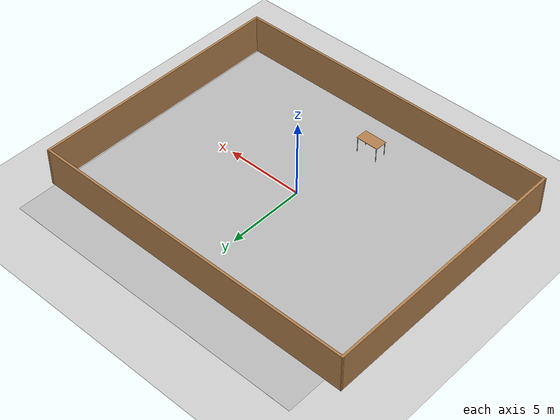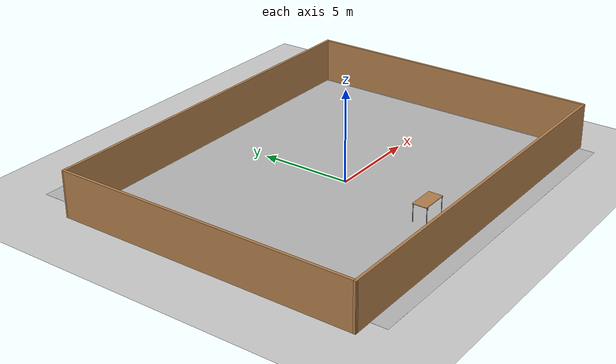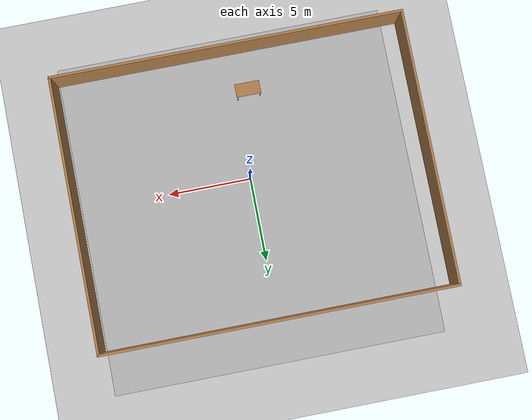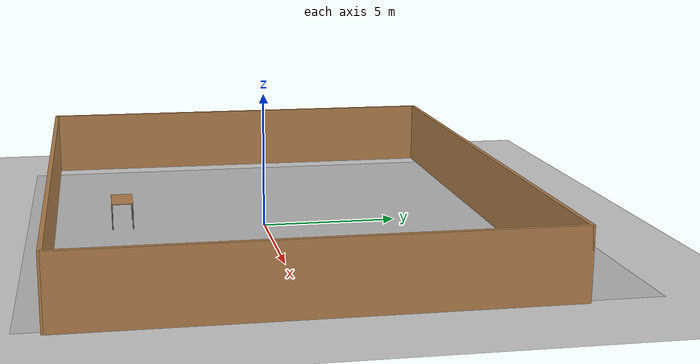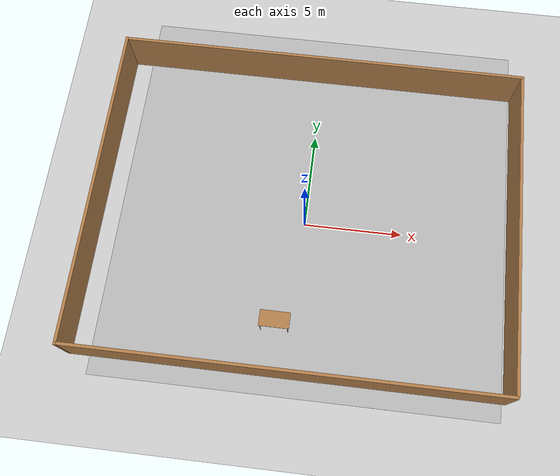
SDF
<sdf version="1.7">
 <world name="default">
  <light name="sun" type="directional">
   <pose>0 0 10 0 -0 0</pose>
   <diffuse>0.8 0.8 0.8 1</diffuse>
   <specular>0.2 0.2 0.2 1</specular>
   <attenuation>
    <range>1000</range>
    <constant>0.9</constant>
    <linear>0.01</linear>
    <quadratic>0.001</quadratic>
   </attenuation>
   <direction>-0.5 0.1 -0.9</direction>
   <spot><inner_angle>0</inner_angle><outer_angle>0</outer_angle><falloff>0</falloff></spot>
  </light>
  <model name="ground_plane">
   <static>1</static>
   <link name="link">
    <collision name="collision">
     <geometry><plane><normal>0 0 1</normal><size>100 100</size></plane></geometry>
     <surface><friction><ode><mu>100</mu><mu2>50</mu2></ode></friction></surface>
    </collision>
    <visual name="visual">
     <cast_shadows>0</cast_shadows>
     <geometry><plane><normal>0 0 1</normal><size>100 100</size></plane></geometry>
     <material>
      <script><uri>file://media/materials/scripts/gazebo.material</uri><name>Gazebo/Grey</name></script>
     </material>
    </visual>
   </link>
  </model>
  <gravity>0 0 -9.8</gravity>
  <magnetic_field>6e-06 2.3e-05 -4.2e-05</magnetic_field>
  <atmosphere type="adiabatic"/>
  <physics type="ode">
   <max_step_size>0.001</max_step_size>
   <real_time_factor>1</real_time_factor>
   <real_time_update_rate>1000</real_time_update_rate>
  </physics>
  <scene><ambient>0.4 0.4 0.4 1</ambient><background>0.7 0.7 0.7 1</background><shadows>1</shadows></scene>
  <spherical_coordinates>
   <surface_model>EARTH_WGS84</surface_model>
   <latitude_deg>0</latitude_deg>
   <longitude_deg>0</longitude_deg>
   <elevation>0</elevation>
   <heading_deg>0</heading_deg>
  </spherical_coordinates>
  <model name="table">
   <static>1</static>
   <link name="link">
    <collision name="surface">
     <pose>0 0 1 0 -0 0</pose>
     <geometry><box><size>1.5 0.8 0.03</size></box></geometry>
     <surface><friction><ode><mu>0.6</mu><mu2>0.6</mu2></ode></friction></surface>
    </collision>
    <visual name="visual1">
     <pose>0 0 1 0 -0 0</pose>
     <geometry><box><size>1.5 0.8 0.03</size></box></geometry>
     <material>
      <script><uri>file://media/materials/scripts/gazebo.material</uri><name>Gazebo/Wood</name></script>
     </material>
    </visual>
    <collision name="front_left_leg">
     <pose>0.68 0.38 0.5 0 -0 0</pose>
     <geometry><cylinder><radius>0.02</radius><length>1</length></cylinder></geometry>
    </collision>
    <visual name="front_left_leg">
     <pose>0.68 0.38 0.5 0 -0 0</pose>
     <geometry><cylinder><radius>0.02</radius><length>1</length></cylinder></geometry>
     <material>
      <script><uri>file://media/materials/scripts/gazebo.material</uri><name>Gazebo/Grey</name></script>
     </material>
    </visual>
    <collision name="front_right_leg">
     <pose>0.68 -0.38 0.5 0 -0 0</pose>
     <geometry><cylinder><radius>0.02</radius><length>1</length></cylinder></geometry>
    </collision>
    <visual name="front_right_leg">
     <pose>0.68 -0.38 0.5 0 -0 0</pose>
     <geometry><cylinder><radius>0.02</radius><length>1</length></cylinder></geometry>
     <material>
      <script><uri>file://media/materials/scripts/gazebo.material</uri><name>Gazebo/Grey</name></script>
     </material>
    </visual>
    <collision name="back_right_leg">
     <pose>-0.68 -0.38 0.5 0 -0 0</pose>
     <geometry><cylinder><radius>0.02</radius><length>1</length></cylinder></geometry>
    </collision>
    <visual name="back_right_leg">
     <pose>-0.68 -0.38 0.5 0 -0 0</pose>
     <geometry><cylinder><radius>0.02</radius><length>1</length></cylinder></geometry>
     <material>
      <script><uri>file://media/materials/scripts/gazebo.material</uri><name>Gazebo/Grey</name></script>
     </material>
    </visual>
    <collision name="back_left_leg">
     <pose>-0.68 0.38 0.5 0 -0 0</pose>
     <geometry><cylinder><radius>0.02</radius><length>1</length></cylinder></geometry>
    </collision>
    <visual name="back_left_leg">
     <pose>-0.68 0.38 0.5 0 -0 0</pose>
     <geometry><cylinder><radius>0.02</radius><length>1</length></cylinder></geometry>
     <material>
      <script><uri>file://media/materials/scripts/gazebo.material</uri><name>Gazebo/Grey</name></script>
     </material>
    </visual>
   </link>
   <pose>-0.869444 -5.30217 0 0 -0 0</pose>
  </model>
  <model name="Floor_room">
   <link name="main">
    <pose>0 0 0.01 0 -0 0</pose>
    <collision name="main_Collision"><geometry><box><size>20 20 0.001</size></box></geometry></collision>
    <visual name="main_Visual">
     <geometry><box><size>20 20 0.001</size></box></geometry>
     <material>
      <script>
       <uri>model://Floor_room/materials/scripts</uri>
       <uri>model://Floor_room/materials/textures</uri>
       <name>floor_room</name>
      </script>
     </material>
    </visual>
   </link>
   <static>1</static>
   <pose>0.344026 1.18272 0 0 -0 0</pose>
  </model>
  <model name="Untitled">
   <pose>-0.064708 0.352938 0 0 -0 0</pose>
   <link name="Wall_11">
    <collision name="Wall_11_Collision">
     <geometry><box><size>21.25 0.15 2.5</size></box></geometry>
     <pose>0 0 1.25 0 -0 0</pose>
    </collision>
    <visual name="Wall_11_Visual">
     <pose>0 0 1.25 0 -0 0</pose>
     <geometry><box><size>21.25 0.15 2.5</size></box></geometry>
     <material>
      <script><uri>file://media/materials/scripts/gazebo.material</uri><name>Gazebo/Wood</name></script>
      <ambient>1 1 1 1</ambient>
     </material>
     <meta><layer>0</layer></meta>
    </visual>
    <pose>0.012426 8.21443 0 0 -0 3.14159</pose>
   </link>
   <link name="Wall_12">
    <collision name="Wall_12_Collision">
     <geometry><box><size>16.5789 0.15 2.5</size></box></geometry>
     <pose>0 0 1.25 0 -0 0</pose>
    </collision>
    <visual name="Wall_12_Visual">
     <pose>0 0 1.25 0 -0 0</pose>
     <geometry><box><size>16.5789 0.15 2.5</size></box></geometry>
     <material>
      <script><uri>file://media/materials/scripts/gazebo.material</uri><name>Gazebo/Wood</name></script>
      <ambient>1 1 1 1</ambient>
     </material>
     <meta><layer>0</layer></meta>
    </visual>
    <pose>-10.5499 0 0 0 -0 -1.5723</pose>
   </link>
   <link name="Wall_4">
    <collision name="Wall_4_Collision">
     <geometry><box><size>21.25 0.15 2.5</size></box></geometry>
     <pose>0 0 1.25 0 -0 0</pose>
    </collision>
    <visual name="Wall_4_Visual">
     <pose>0 0 1.25 0 -0 0</pose>
     <geometry><box><size>21.25 0.15 2.5</size></box></geometry>
     <material>
      <script><uri>file://media/materials/scripts/gazebo.material</uri><name>Gazebo/Wood</name></script>
      <ambient>1 1 1 1</ambient>
     </material>
     <meta><layer>0</layer></meta>
    </visual>
    <pose>-0.012314 -8.21443 0 0 -0 0</pose>
   </link>
   <link name="Wall_9">
    <collision name="Wall_9_Collision">
     <geometry><box><size>16.5 0.15 2.5</size></box></geometry>
     <pose>0 0 1.25 0 -0 0</pose>
    </collision>
    <visual name="Wall_9_Visual">
     <pose>0 0 1.25 0 -0 0</pose>
     <geometry><box><size>16.5 0.15 2.5</size></box></geometry>
     <material>
      <script><uri>file://media/materials/scripts/gazebo.material</uri><name>Gazebo/Wood</name></script>
      <ambient>1 1 1 1</ambient>
     </material>
     <meta><layer>0</layer></meta>
    </visual>
    <pose>10.5624 0.039434 0 0 -0 -1.5708</pose>
   </link>
   <static>1</static>
  </model>
 </world>
</sdf>
